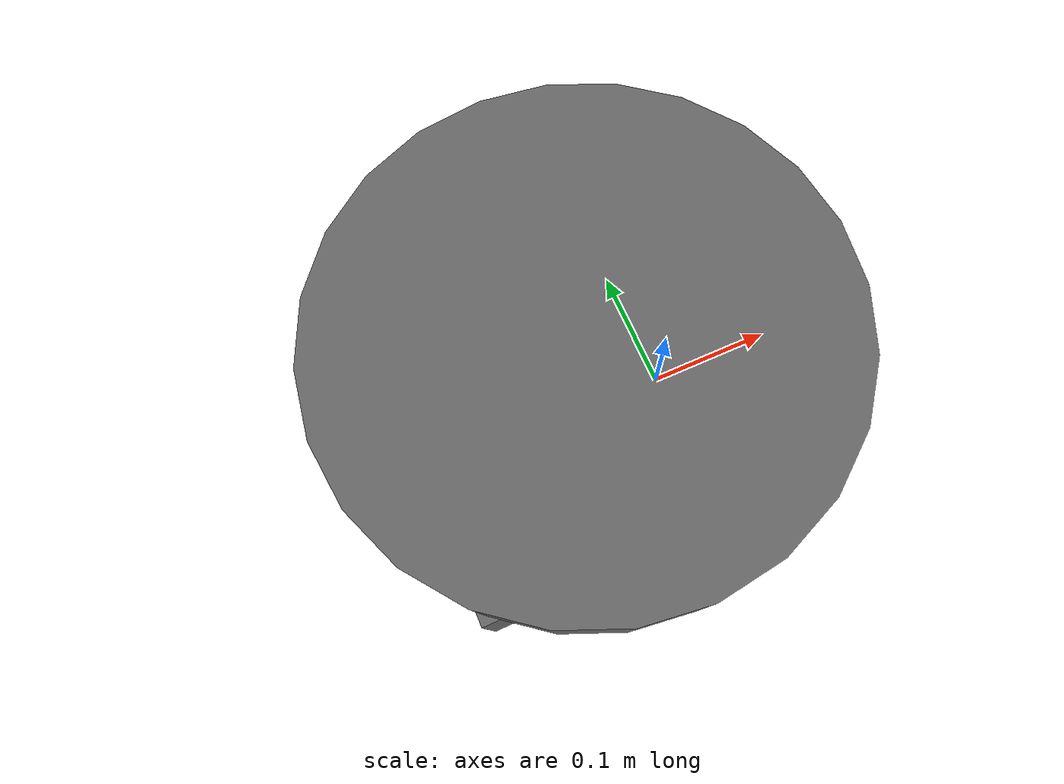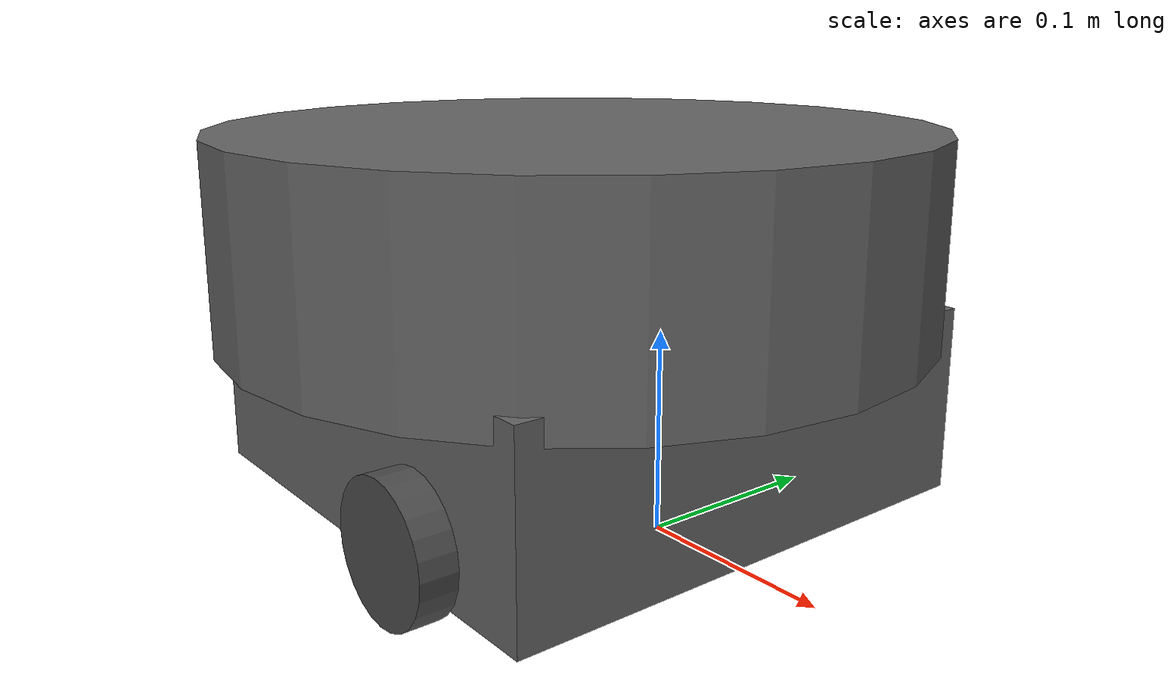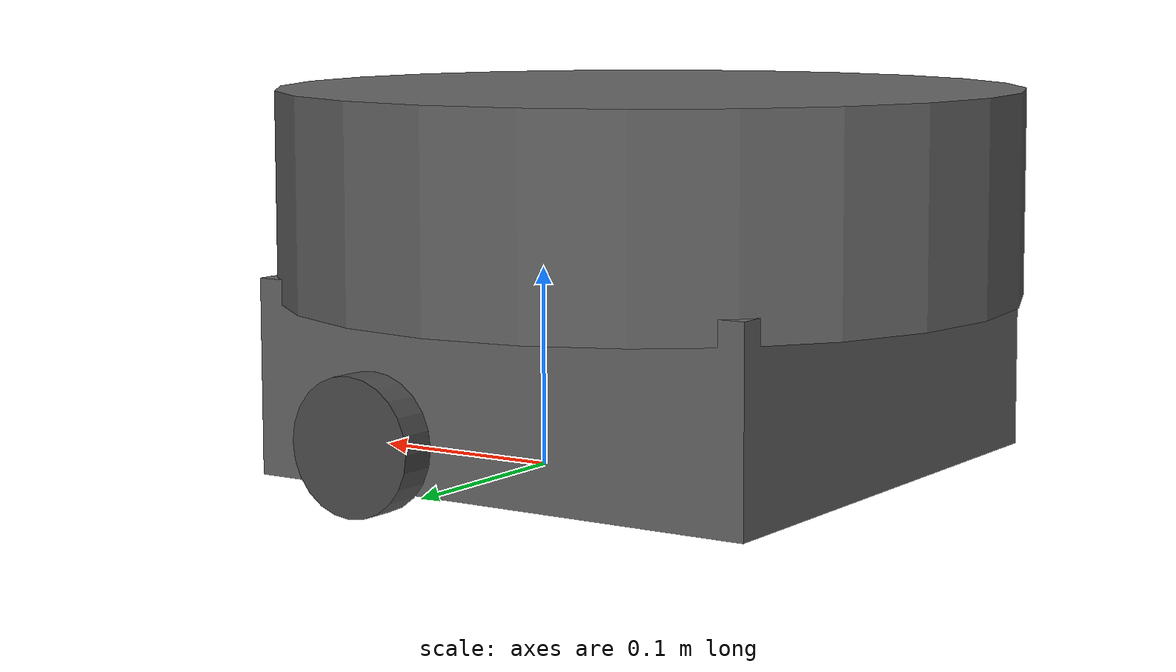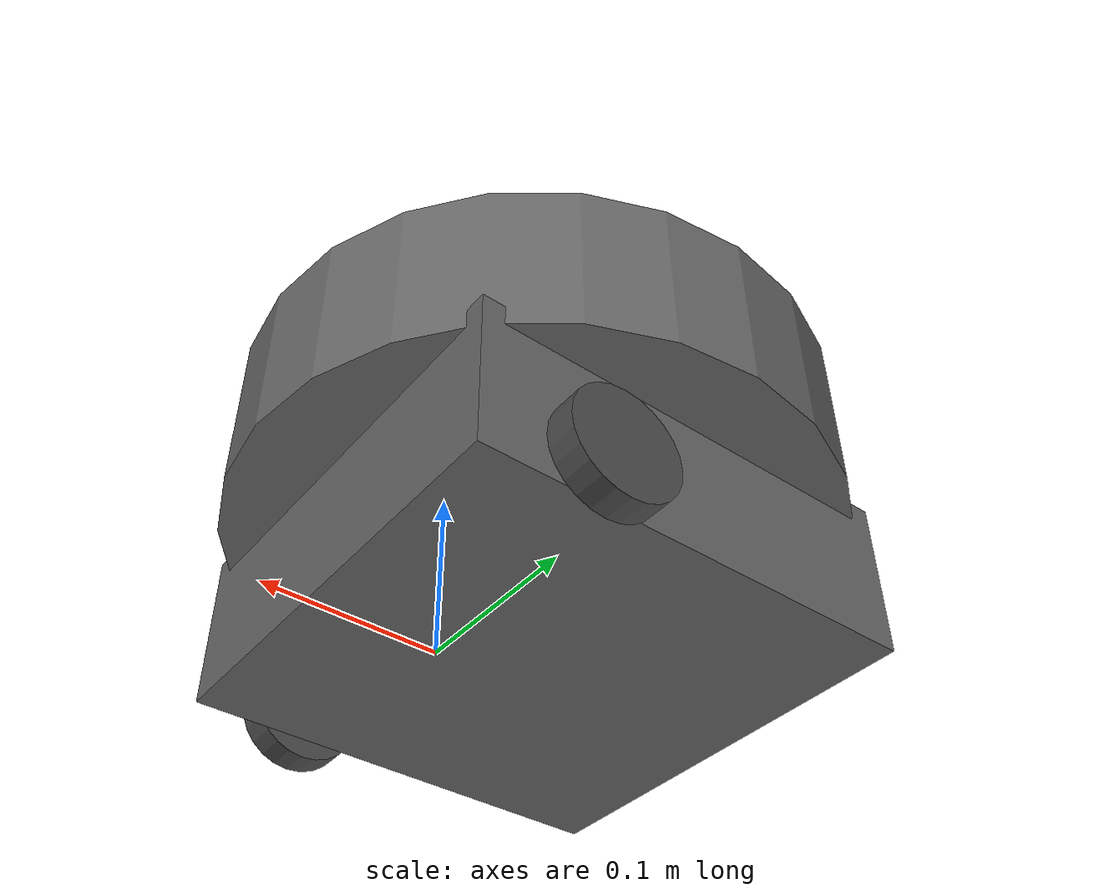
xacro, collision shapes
<?xml version="1.0"?>
<robot name="turtlebot3_waffle" xmlns:xacro="http://www.ros.org/wiki/xacro">

  <!-- (Step 1) Define the robot_namespace argument -->
  <xacro:arg name="robot_namespace" default=""/>

  <!-- (Step 2) Include the Gazebo plugin definitions -->
  <xacro:include filename="$(find turtlebot3_description)/urdf/turtlebot3_waffle.gazebo.xacro" />

  <!-- (Step 3) Instantiate the Gazebo plugins, passing the namespace -->
  <xacro:turtlebot3_waffle_gazebo robot_namespace="$(arg robot_namespace)"/>

  <!-- Original URDF content from turtlebot3_waffle.urdf -->
  <material name="black">
      <color rgba="0.0 0.0 0.0 1.0"/>
  </material>

  <material name="dark">
    <color rgba="0.3 0.3 0.3 1.0"/>
  </material>

  <material name="light_black">
    <color rgba="0.4 0.4 0.4 1.0"/>
  </material>

  <link name="base_footprint"/>

  <joint name="base_joint" type="fixed">
    <parent link="base_footprint"/>
    <child link="base_link" />
    <origin xyz="0 0 0.010" rpy="0 0 0"/>
  </joint>

  <link name="base_link">
    <visual>
      <origin xyz="-0.064 0 0.0" rpy="0 0 0"/>
      <geometry>
        <mesh filename="package://turtlebot3_description/meshes/bases/waffle_base.stl" scale="0.001 0.001 0.001"/>
      </geometry>
      <material name="light_black"/>
    </visual>

    <collision>
      <origin xyz="-0.064 0 0.047" rpy="0 0 0"/>
      <geometry>
        <box size="0.266 0.266 0.094"/>
      </geometry>
    </collision>

    <visual name="lidar_visibility_visual">
      <origin xyz="-0.064 0 0.132" rpy="0 0 0"/>
      <geometry>
        <cylinder length="0.10" radius="0.18"/>
      </geometry>
      <material name="lidar_debug_blue">
        <color rgba="0.0 0.2 1.0 0.35"/>
      </material>
    </visual>

    <collision name="lidar_visibility_collision">
      <origin xyz="-0.064 0 0.132" rpy="0 0 0"/>
      <geometry>
        <cylinder length="0.10" radius="0.18"/>
      </geometry>
    </collision>

    <inertial>
      <origin xyz="0 0 0" rpy="0 0 0"/>
      <mass value="1.3729096e+00"/>
      <inertia ixx="8.7002718e-03" ixy="-4.7576583e-05" ixz="1.1160499e-04"
               iyy="8.6195418e-03" iyz="-3.5422299e-06"
               izz="1.4612727e-02" />
    </inertial>
  </link>

  <joint name="wheel_left_joint" type="continuous">
    <parent link="base_link"/>
    <child link="wheel_left_link"/>
    <origin xyz="0.0 0.144 0.023" rpy="-1.57 0 0"/>
    <axis xyz="0 0 1"/>
  </joint>

  <link name="wheel_left_link">
    <visual>
      <origin xyz="0 0 0" rpy="1.57 0 0"/>
      <geometry>
        <mesh filename="package://turtlebot3_description/meshes/wheels/left_tire.stl" scale="0.001 0.001 0.001"/>
      </geometry>
      <material name="dark"/>
    </visual>

    <collision>
      <origin xyz="0 0 0" rpy="0 0 0"/>
      <geometry>
        <cylinder length="0.018" radius="0.033"/>
      </geometry>
    </collision>

    <inertial>
      <origin xyz="0 0 0" />
      <mass value="2.8498940e-02" />
      <inertia ixx="1.1175580e-05" ixy="-4.2369783e-11" ixz="-5.9381719e-09"
               iyy="1.1192413e-05" iyz="-1.4400107e-11"
               izz="2.0712558e-05" />
      </inertial>
  </link>

  <joint name="wheel_right_joint" type="continuous">
    <parent link="base_link"/>
    <child link="wheel_right_link"/>
    <origin xyz="0.0 -0.144 0.023" rpy="-1.57 0 0"/>
    <axis xyz="0 0 1"/>
  </joint>

  <link name="wheel_right_link">
    <visual>
      <origin xyz="0 0 0" rpy="1.57 0 0"/>
      <geometry>
        <mesh filename="package://turtlebot3_description/meshes/wheels/right_tire.stl" scale="0.001 0.001 0.001"/>
      </geometry>
      <material name="dark"/>
    </visual>

    <collision>
      <origin xyz="0 0 0" rpy="0 0 0"/>
      <geometry>
        <cylinder length="0.018" radius="0.033"/>
      </geometry>
    </collision>

    <inertial>
      <origin xyz="0 0 0" />
      <mass value="2.8498940e-02" />
      <inertia ixx="1.1175580e-05" ixy="-4.2369783e-11" ixz="-5.9381719e-09"
               iyy="1.1192413e-05" iyz="-1.4400107e-11"
               izz="2.0712558e-05" />
      </inertial>
  </link>

  <joint name="imu_joint" type="fixed">
    <parent link="base_link"/>
    <child link="imu_link"/>
    <origin xyz="0.0 0 0.068" rpy="0 0 0"/>
  </joint>

  <link name="imu_link"/>

  <joint name="scan_joint" type="fixed">
    <parent link="base_link"/>
    <child link="base_scan"/>
    <origin xyz="-0.064 0 0.122" rpy="0 0 0"/>
  </joint>

  <link name="base_scan">
    <visual>
      <origin xyz="0 0 0" rpy="0 0 0"/>
      <geometry>
        <mesh filename="package://turtlebot3_description/meshes/sensors/lds.stl" scale="0.001 0.001 0.001"/>
      </geometry>
      <material name="dark"/>
    </visual>

    <collision>
      <origin xyz="0.015 0 -0.0065" rpy="0 0 0"/>
      <geometry>
        <cylinder length="0.0315" radius="0.055"/>
      </geometry>
    </collision>

    <inertial>
      <mass value="0.114" />
      <origin xyz="0 0 0" />
      <inertia ixx="0.001" ixy="0.0" ixz="0.0"
               iyy="0.001" iyz="0.0"
               izz="0.001" />
    </inertial>
  </link>

</robot>
